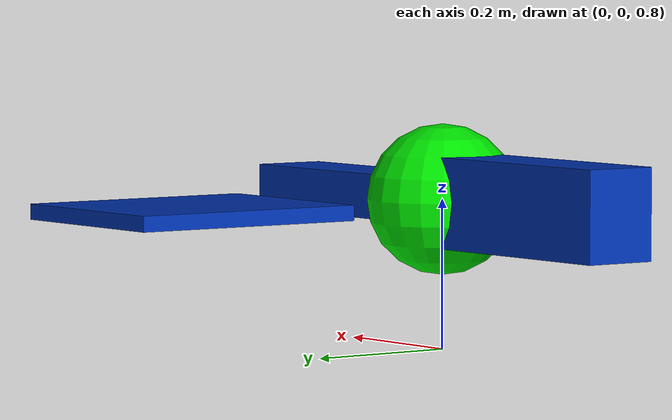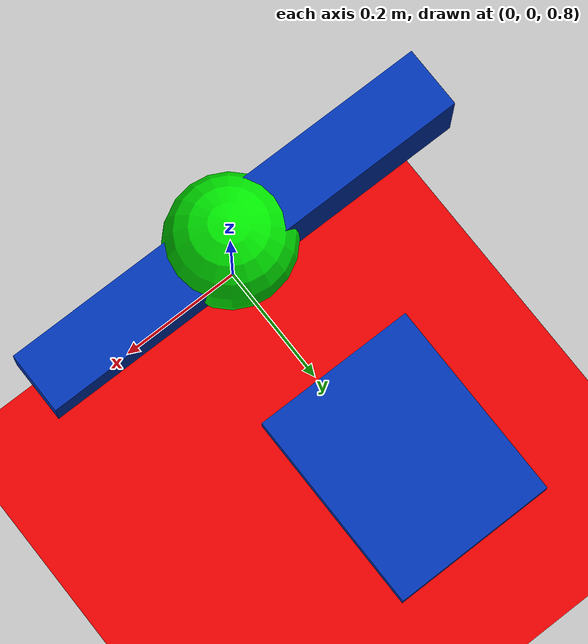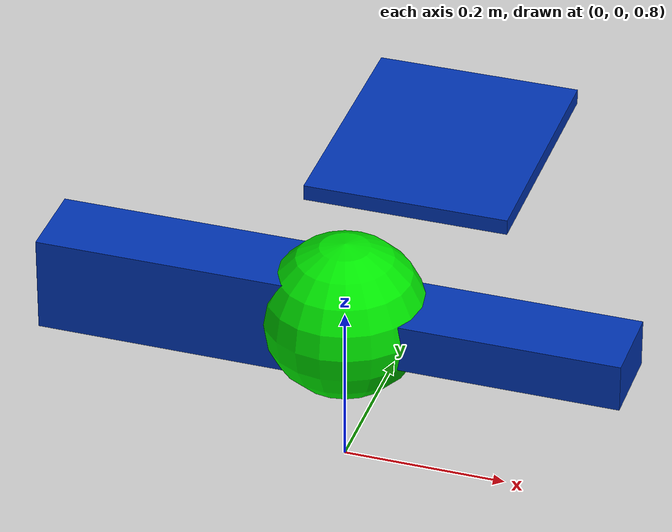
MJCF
<mujoco>
    <option gravity="0 0 0"/>
    <worldbody>
        <light diffuse=".5 .5 .5" pos="0 0 5" dir="0 0 -1"/>
        <geom type="plane" size="10 10 0.1" rgba=".9 0 0 1"/>

        <body name="fish" pos="0 0 1" euler="0 0 0">
            <joint type="free" axis="0 0 0" pos="0 0 0" />
            <body name="body" pos="0 0 0" euler="0 0 0">
                <geom type="sphere" size="0.1" rgba="0 .9 0 1" mass="0.02768" />
            </body>

            <body name="fin1" pos=".2 0 0" euler="0 -90 0">
                <joint name="joint1" type="hinge" axis="1 0 0" pos="0 0 .25" range="-45 45" />
                <geom type="box" size="0.03 0.05 0.15" rgba="0 0.2 0.7 1" mass="0.48206" />
            </body>

            <body name="fin2" pos="-.2 0 0" euler="0 90 0">
                <joint name="joint2" type="hinge" axis="1 0 0" pos="0 0 .25" range="-45 45" />
                <geom type="box" size="0.06 0.05 0.17" rgba="0 0.2 0.7 1" mass="0.29928" />
            </body>

            <body name="tail" pos="0 0.4 0" euler="0 90 90">
                <joint name="joint3" type="hinge" axis="0 0 1" pos="0 0 0" range="-45 45" />
                <geom type="box" size="0.16 0.01 0.13" rgba="0 0.2 0.7 1" mass="0.32930" />
            </body>
        </body>
    </worldbody>

    <actuator>
        <motor joint="joint1" name="t1" gear="10" ctrllimited="true" ctrlrange="-5 5" />
        <motor joint="joint2" name="t2" gear="10" ctrllimited="true" ctrlrange="-5 5" />
        <motor joint="joint3" name="t3" gear="10" ctrllimited="true" ctrlrange="-5 5" />
    </actuator>
</mujoco>
